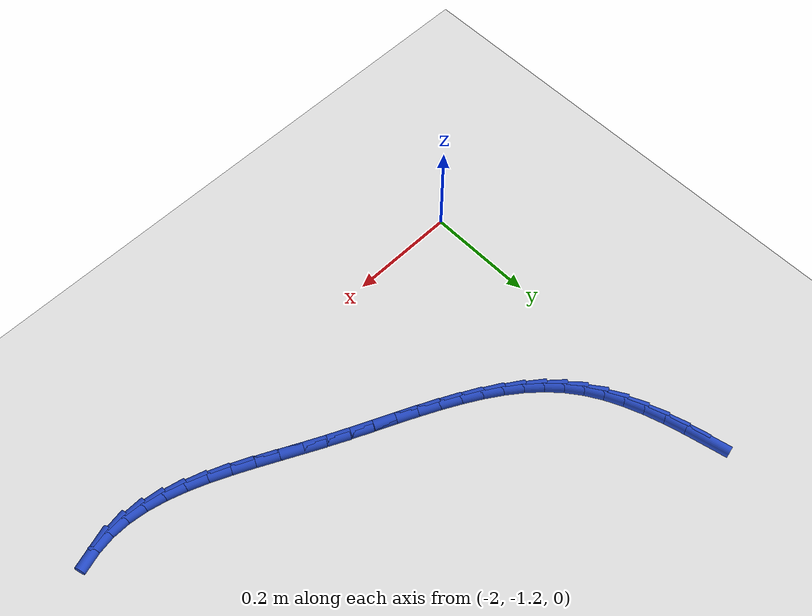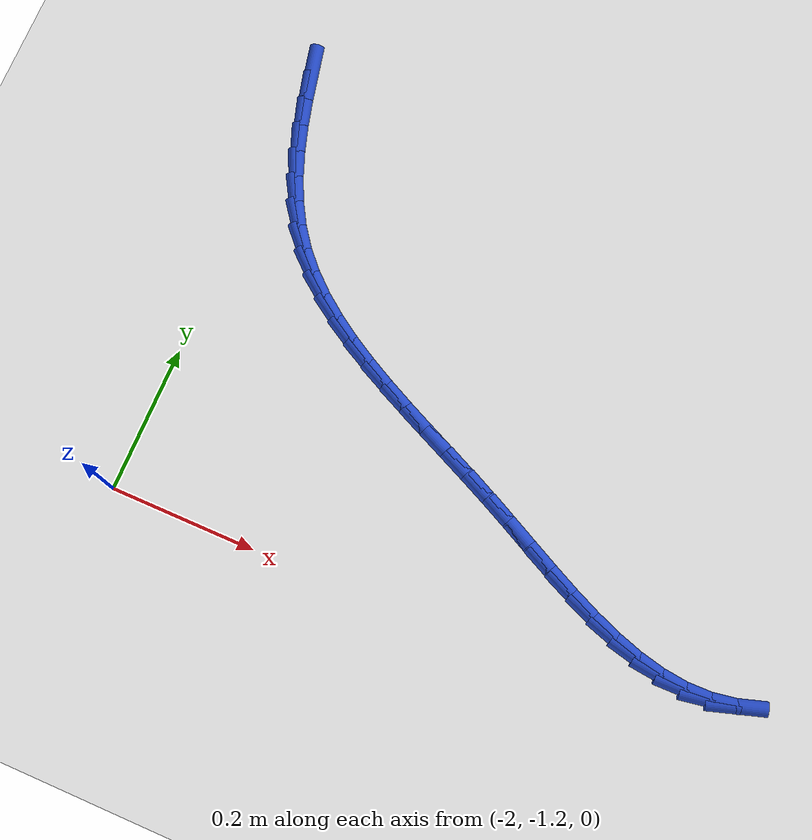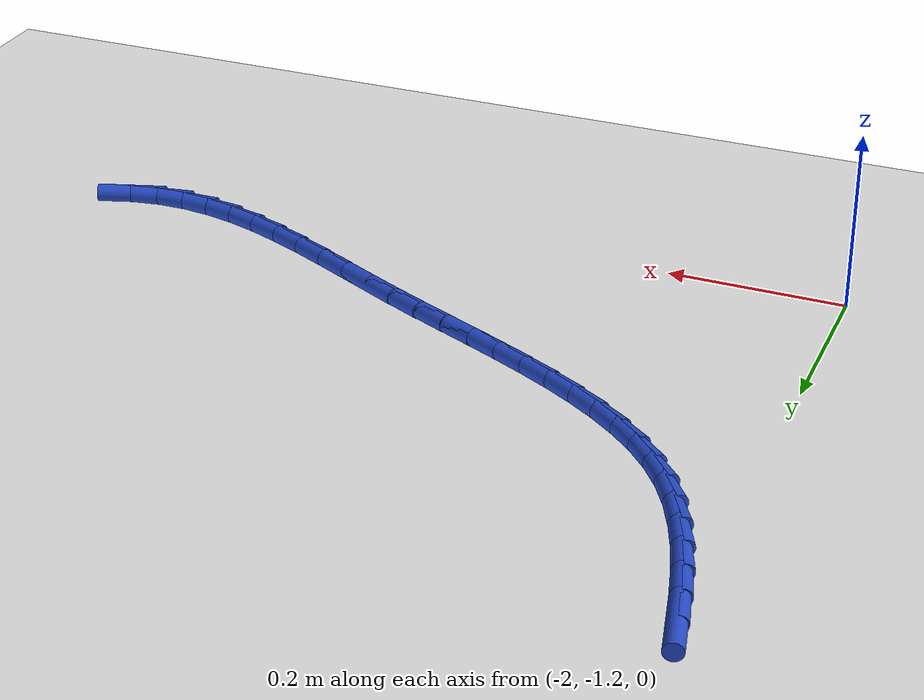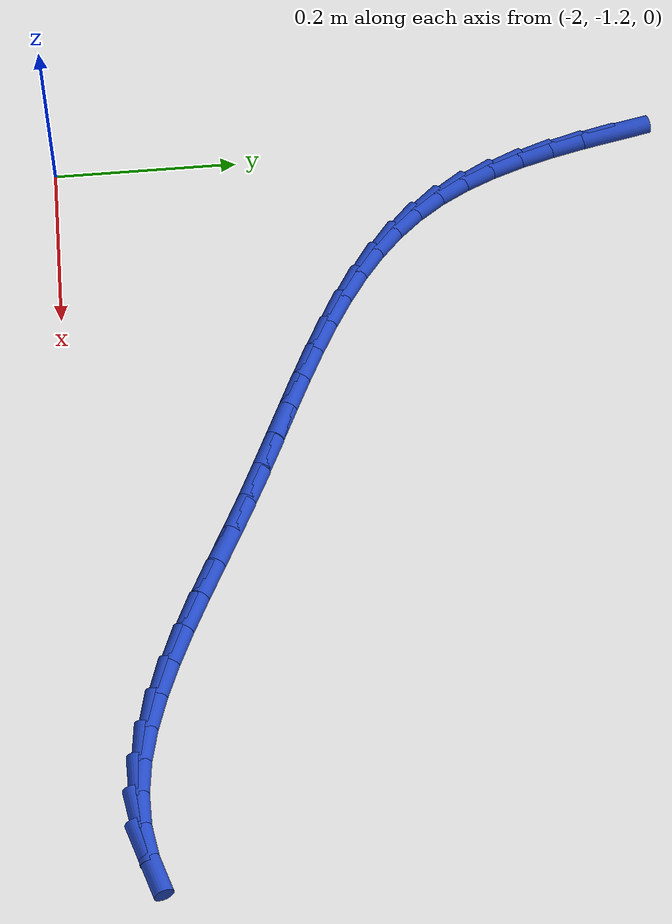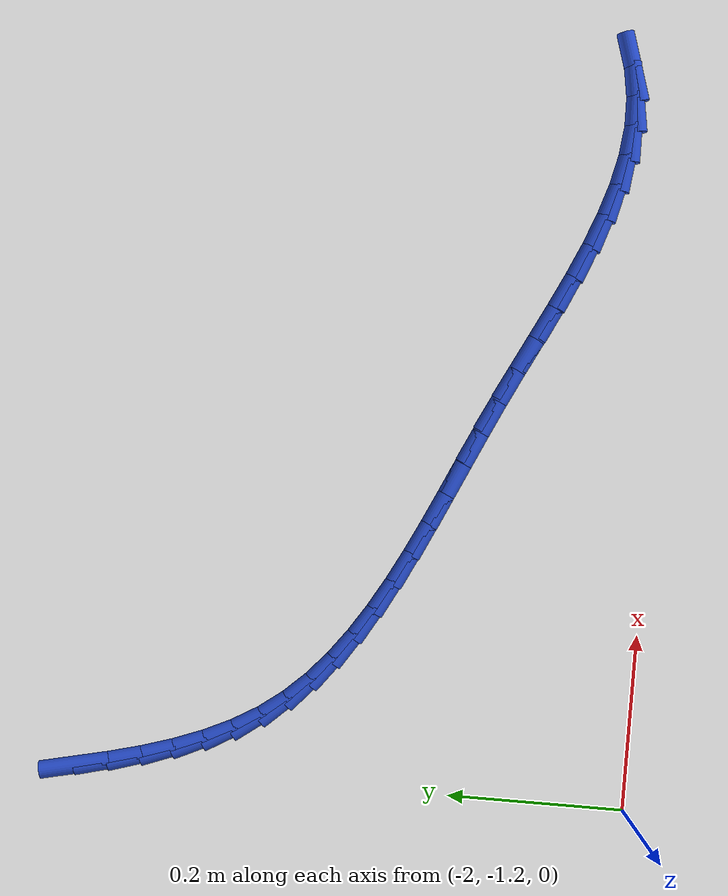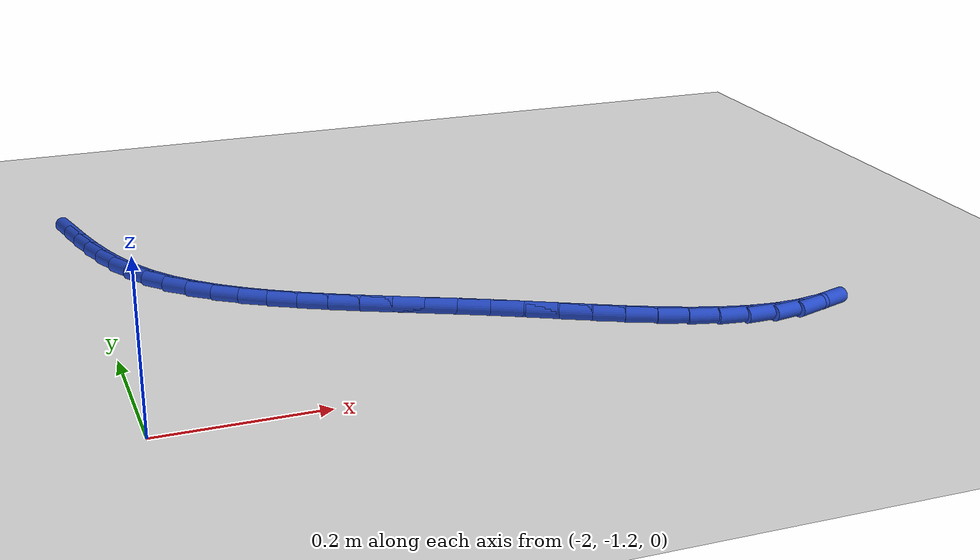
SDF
<sdf version="1.6">
 <world name="default">
  <model name="ground_plane">
   <static>1</static>
   <link name="link">
    <collision name="collision">
     <geometry><plane><normal>0 0 1</normal><size>100 100</size></plane></geometry>
     <surface><friction><ode><mu>100</mu><mu2>50</mu2></ode></friction></surface>
    </collision>
    <visual name="visual">
     <cast_shadows>0</cast_shadows>
     <geometry><plane><normal>0 0 1</normal><size>100 100</size></plane></geometry>
     <material>
      <script><uri>file://media/materials/scripts/gazebo.material</uri><name>Gazebo/WhiteGlow</name></script>
     </material>
    </visual>
   </link>
  </model>
  <model name="line">
   <link name="link_103">
    <pose>-1.9987811465578371 -0.5763790556070482 0.01 0 1.57 -1.3476971664473565</pose>
    <collision name="collision">
     <geometry><cylinder><radius>0.01</radius><length>0.08</length></cylinder></geometry>
    </collision>
    <visual name="visual">
     <material>
      <script><name>Gazebo/Blue</name><uri>file://media/materials/scripts/gazebo.material</uri></script>
     </material>
     <geometry><cylinder><radius>0.01</radius><length>0.08</length></cylinder></geometry>
    </visual>
   </link>
   <link name="link_104">
    <pose>-1.990206146395246 -0.6141750622011457 0.01 0 1.57 -1.3139882704953778</pose>
    <collision name="collision">
     <geometry><cylinder><radius>0.01</radius><length>0.08</length></cylinder></geometry>
    </collision>
    <visual name="visual">
     <material>
      <script><name>Gazebo/Blue</name><uri>file://media/materials/scripts/gazebo.material</uri></script>
     </material>
     <geometry><cylinder><radius>0.01</radius><length>0.08</length></cylinder></geometry>
    </visual>
   </link>
   <link name="link_105">
    <pose>-1.9805494109867747 -0.6509476924169767 0.01 0 1.57 -1.2674572673341014</pose>
    <collision name="collision">
     <geometry><cylinder><radius>0.01</radius><length>0.08</length></cylinder></geometry>
    </collision>
    <visual name="visual">
     <material>
      <script><name>Gazebo/Blue</name><uri>file://media/materials/scripts/gazebo.material</uri></script>
     </material>
     <geometry><cylinder><radius>0.01</radius><length>0.08</length></cylinder></geometry>
    </visual>
   </link>
   <link name="link_106">
    <pose>-1.969446816858246 -0.6864193959441629 0.01 0 1.57 -1.2067949294963474</pose>
    <collision name="collision">
     <geometry><cylinder><radius>0.01</radius><length>0.08</length></cylinder></geometry>
    </collision>
    <visual name="visual">
     <material>
      <script><name>Gazebo/Blue</name><uri>file://media/materials/scripts/gazebo.material</uri></script>
     </material>
     <geometry><cylinder><radius>0.01</radius><length>0.08</length></cylinder></geometry>
    </visual>
   </link>
   <link name="link_107">
    <pose>-1.9565342405354802 -0.7203126224723259 0.01 0 1.57 -1.1306892117987464</pose>
    <collision name="collision">
     <geometry><cylinder><radius>0.01</radius><length>0.08</length></cylinder></geometry>
    </collision>
    <visual name="visual">
     <material>
      <script><name>Gazebo/Blue</name><uri>file://media/materials/scripts/gazebo.material</uri></script>
     </material>
     <geometry><cylinder><radius>0.01</radius><length>0.08</length></cylinder></geometry>
    </visual>
   </link>
   <link name="link_108">
    <pose>-1.9414475585443014 -0.7523498216910874 0.01 0 1.57 -1.0382144389401604</pose>
    <collision name="collision">
     <geometry><cylinder><radius>0.01</radius><length>0.08</length></cylinder></geometry>
    </collision>
    <visual name="visual">
     <material>
      <script><name>Gazebo/Blue</name><uri>file://media/materials/scripts/gazebo.material</uri></script>
     </material>
     <geometry><cylinder><radius>0.01</radius><length>0.08</length></cylinder></geometry>
    </visual>
   </link>
   <link name="link_109">
    <pose>-1.9238226474105307 -0.7822534432900698 0.01 0 1.57 -0.9301791211754447</pose>
    <collision name="collision">
     <geometry><cylinder><radius>0.01</radius><length>0.08</length></cylinder></geometry>
    </collision>
    <visual name="visual">
     <material>
      <script><name>Gazebo/Blue</name><uri>file://media/materials/scripts/gazebo.material</uri></script>
     </material>
     <geometry><cylinder><radius>0.01</radius><length>0.08</length></cylinder></geometry>
    </visual>
   </link>
   <link name="link_110">
    <pose>-1.9033144177326398 -0.8097626723370756 0.01 0 1.57 -0.82126412027236</pose>
    <collision name="collision">
     <geometry><cylinder><radius>0.01</radius><length>0.08</length></cylinder></geometry>
    </collision>
    <visual name="visual">
     <material>
      <script><name>Gazebo/Blue</name><uri>file://media/materials/scripts/gazebo.material</uri></script>
     </material>
     <geometry><cylinder><radius>0.01</radius><length>0.08</length></cylinder></geometry>
    </visual>
   </link>
   <link name="link_111">
    <pose>-1.879910189072759 -0.8349089587147207 0.01 0 1.57 -0.7250371680217382</pose>
    <collision name="collision">
     <geometry><cylinder><radius>0.01</radius><length>0.08</length></cylinder></geometry>
    </collision>
    <visual name="visual">
     <material>
      <script><name>Gazebo/Blue</name><uri>file://media/materials/scripts/gazebo.material</uri></script>
     </material>
     <geometry><cylinder><radius>0.01</radius><length>0.08</length></cylinder></geometry>
    </visual>
   </link>
   <link name="link_112">
    <pose>-1.8538799356122424 -0.8579722714762054 0.01 0 1.57 -0.6431682542207866</pose>
    <collision name="collision">
     <geometry><cylinder><radius>0.01</radius><length>0.08</length></cylinder></geometry>
    </collision>
    <visual name="visual">
     <material>
      <script><name>Gazebo/Blue</name><uri>file://media/materials/scripts/gazebo.material</uri></script>
     </material>
     <geometry><cylinder><radius>0.01</radius><length>0.08</length></cylinder></geometry>
    </visual>
   </link>
   <link name="link_113">
    <pose>-1.825502632657568 -0.8792404937578461 0.01 0 1.57 -0.5757173278663115</pose>
    <collision name="collision">
     <geometry><cylinder><radius>0.01</radius><length>0.08</length></cylinder></geometry>
    </collision>
    <visual name="visual">
     <material>
      <script><name>Gazebo/Blue</name><uri>file://media/materials/scripts/gazebo.material</uri></script>
     </material>
     <geometry><cylinder><radius>0.01</radius><length>0.08</length></cylinder></geometry>
    </visual>
   </link>
   <link name="link_114">
    <pose>-1.7950572555152151 -0.8990015086959621 0.01 0 1.57 -0.521994365267637</pose>
    <collision name="collision">
     <geometry><cylinder><radius>0.01</radius><length>0.08</length></cylinder></geometry>
    </collision>
    <visual name="visual">
     <material>
      <script><name>Gazebo/Blue</name><uri>file://media/materials/scripts/gazebo.material</uri></script>
     </material>
     <geometry><cylinder><radius>0.01</radius><length>0.08</length></cylinder></geometry>
    </visual>
   </link>
   <link name="link_115">
    <pose>-1.7628227794916629 -0.9175431994268715 0.01 0 1.57 -0.4809891052238394</pose>
    <collision name="collision">
     <geometry><cylinder><radius>0.01</radius><length>0.08</length></cylinder></geometry>
    </collision>
    <visual name="visual">
     <material>
      <script><name>Gazebo/Blue</name><uri>file://media/materials/scripts/gazebo.material</uri></script>
     </material>
     <geometry><cylinder><radius>0.01</radius><length>0.08</length></cylinder></geometry>
    </visual>
   </link>
   <link name="link_116">
    <pose>-1.729078179893391 -0.9351534490868915 0.01 0 1.57 -0.45165570627455687</pose>
    <collision name="collision">
     <geometry><cylinder><radius>0.01</radius><length>0.08</length></cylinder></geometry>
    </collision>
    <visual name="visual">
     <material>
      <script><name>Gazebo/Blue</name><uri>file://media/materials/scripts/gazebo.material</uri></script>
     </material>
     <geometry><cylinder><radius>0.01</radius><length>0.08</length></cylinder></geometry>
    </visual>
   </link>
   <link name="link_117">
    <pose>-1.6941024320268774 -0.9521201408123406 0.01 0 1.57 -0.43307069379231916</pose>
    <collision name="collision">
     <geometry><cylinder><radius>0.01</radius><length>0.08</length></cylinder></geometry>
    </collision>
    <visual name="visual">
     <material>
      <script><name>Gazebo/Blue</name><uri>file://media/materials/scripts/gazebo.material</uri></script>
     </material>
     <geometry><cylinder><radius>0.01</radius><length>0.08</length></cylinder></geometry>
    </visual>
   </link>
   <link name="link_118">
    <pose>-1.6581745111986017 -0.9687311577395368 0.01 0 1.57 -0.42450498620148597</pose>
    <collision name="collision">
     <geometry><cylinder><radius>0.01</radius><length>0.08</length></cylinder></geometry>
    </collision>
    <visual name="visual">
     <material>
      <script><name>Gazebo/Blue</name><uri>file://media/materials/scripts/gazebo.material</uri></script>
     </material>
     <geometry><cylinder><radius>0.01</radius><length>0.08</length></cylinder></geometry>
    </visual>
   </link>
   <link name="link_119">
    <pose>-1.6215733927150429 -0.9852743830047987 0.01 0 1.57 -0.42544521777746863</pose>
    <collision name="collision">
     <geometry><cylinder><radius>0.01</radius><length>0.08</length></cylinder></geometry>
    </collision>
    <visual name="visual">
     <material>
      <script><name>Gazebo/Blue</name><uri>file://media/materials/scripts/gazebo.material</uri></script>
     </material>
     <geometry><cylinder><radius>0.01</radius><length>0.08</length></cylinder></geometry>
    </visual>
   </link>
   <link name="link_120">
    <pose>-1.5845780518826795 -1.0020376997444442 0.01 0 1.57 -0.43558703518714526</pose>
    <collision name="collision">
     <geometry><cylinder><radius>0.01</radius><length>0.08</length></cylinder></geometry>
    </collision>
    <visual name="visual">
     <material>
      <script><name>Gazebo/Blue</name><uri>file://media/materials/scripts/gazebo.material</uri></script>
     </material>
     <geometry><cylinder><radius>0.01</radius><length>0.08</length></cylinder></geometry>
    </visual>
   </link>
   <link name="link_121">
    <pose>-1.5474674640079915 -1.019308991094791 0.01 0 1.57 -0.45330822308421914</pose>
    <collision name="collision">
     <geometry><cylinder><radius>0.01</radius><length>0.08</length></cylinder></geometry>
    </collision>
    <visual name="visual">
     <material>
      <script><name>Gazebo/Blue</name><uri>file://media/materials/scripts/gazebo.material</uri></script>
     </material>
     <geometry><cylinder><radius>0.01</radius><length>0.08</length></cylinder></geometry>
    </visual>
   </link>
   <link name="link_122">
    <pose>-1.5105032624842292 -1.037315798111702 0.01 0 1.57 -0.46502037150977166</pose>
    <collision name="collision">
     <geometry><cylinder><radius>0.01</radius><length>0.08</length></cylinder></geometry>
    </collision>
    <visual name="visual">
     <material>
      <script><name>Gazebo/Blue</name><uri>file://media/materials/scripts/gazebo.material</uri></script>
     </material>
     <geometry><cylinder><radius>0.01</radius><length>0.08</length></cylinder></geometry>
    </visual>
   </link>
   <link name="link_123">
    <pose>-1.473789090605125 -1.055735927160843 0.01 0 1.57 -0.4635375548807382</pose>
    <collision name="collision">
     <geometry><cylinder><radius>0.01</radius><length>0.08</length></cylinder></geometry>
    </collision>
    <visual name="visual">
     <material>
      <script><name>Gazebo/Blue</name><uri>file://media/materials/scripts/gazebo.material</uri></script>
     </material>
     <geometry><cylinder><radius>0.01</radius><length>0.08</length></cylinder></geometry>
    </visual>
   </link>
   <link name="link_124">
    <pose>-1.437344154676043 -1.0739533817570415 0.01 0 1.57 -0.44843031824717783</pose>
    <collision name="collision">
     <geometry><cylinder><radius>0.01</radius><length>0.08</length></cylinder></geometry>
    </collision>
    <visual name="visual">
     <material>
      <script><name>Gazebo/Blue</name><uri>file://media/materials/scripts/gazebo.material</uri></script>
     </material>
     <geometry><cylinder><radius>0.01</radius><length>0.08</length></cylinder></geometry>
    </visual>
   </link>
   <link name="link_125">
    <pose>-1.4011868655333006 -1.0913493975396003 0.01 0 1.57 -0.4187350550060369</pose>
    <collision name="collision">
     <geometry><cylinder><radius>0.01</radius><length>0.08</length></cylinder></geometry>
    </collision>
    <visual name="visual">
     <material>
      <script><name>Gazebo/Blue</name><uri>file://media/materials/scripts/gazebo.material</uri></script>
     </material>
     <geometry><cylinder><radius>0.01</radius><length>0.08</length></cylinder></geometry>
    </visual>
   </link>
   <link name="link_126">
    <pose>-1.365335634013216 -1.107305210147822 0.01 0 1.57 -0.3728673307870903</pose>
    <collision name="collision">
     <geometry><cylinder><radius>0.01</radius><length>0.08</length></cylinder></geometry>
    </collision>
    <visual name="visual">
     <material>
      <script><name>Gazebo/Blue</name><uri>file://media/materials/scripts/gazebo.material</uri></script>
     </material>
     <geometry><cylinder><radius>0.01</radius><length>0.08</length></cylinder></geometry>
    </visual>
   </link>
   <link name="link_127">
    <pose>-1.3298088709521072 -1.1212020552210091 0.01 0 1.57 -0.308678298807698</pose>
    <collision name="collision">
     <geometry><cylinder><radius>0.01</radius><length>0.08</length></cylinder></geometry>
    </collision>
    <visual name="visual">
     <material>
      <script><name>Gazebo/Blue</name><uri>file://media/materials/scripts/gazebo.material</uri></script>
     </material>
     <geometry><cylinder><radius>0.01</radius><length>0.08</length></cylinder></geometry>
    </visual>
   </link>
   <link name="link_128">
    <pose>-1.2946249871862916 -1.1324211683984644 0.01 0 1.57 -0.22370572086758728</pose>
    <collision name="collision">
     <geometry><cylinder><radius>0.01</radius><length>0.08</length></cylinder></geometry>
    </collision>
    <visual name="visual">
     <material>
      <script><name>Gazebo/Blue</name><uri>file://media/materials/scripts/gazebo.material</uri></script>
     </material>
     <geometry><cylinder><radius>0.01</radius><length>0.08</length></cylinder></geometry>
    </visual>
   </link>
   <link name="link_129">
    <pose>-1.2598023935520872 -1.1403437853194907 0.01 0 1.57 -0.11582707396898931</pose>
    <collision name="collision">
     <geometry><cylinder><radius>0.01</radius><length>0.08</length></cylinder></geometry>
    </collision>
    <visual name="visual">
     <material>
      <script><name>Gazebo/Blue</name><uri>file://media/materials/scripts/gazebo.material</uri></script>
     </material>
     <geometry><cylinder><radius>0.01</radius><length>0.08</length></cylinder></geometry>
    </visual>
   </link>
   <link name="link_130">
    <pose>-1.2253595008858116 -1.1443511416233902 0.01 0 1.57 0.015468646089049418</pose>
    <collision name="collision">
     <geometry><cylinder><radius>0.01</radius><length>0.08</length></cylinder></geometry>
    </collision>
    <visual name="visual">
     <material>
      <script><name>Gazebo/Blue</name><uri>file://media/materials/scripts/gazebo.material</uri></script>
     </material>
     <geometry><cylinder><radius>0.01</radius><length>0.08</length></cylinder></geometry>
    </visual>
   </link>
   <link name="link_131">
    <pose>-1.1913147200237821 -1.1438244729494662 0.01 0 1.57 0.16574984905607065</pose>
    <collision name="collision">
     <geometry><cylinder><radius>0.01</radius><length>0.08</length></cylinder></geometry>
    </collision>
    <visual name="visual">
     <material>
      <script><name>Gazebo/Blue</name><uri>file://media/materials/scripts/gazebo.material</uri></script>
     </material>
     <geometry><cylinder><radius>0.01</radius><length>0.08</length></cylinder></geometry>
    </visual>
   </link>
   <link name="link_132">
    <pose>-1.1576805171731204 -1.1381979887957967 0.01 0 1.57 0.3030118062454791</pose>
    <collision name="collision">
     <geometry><cylinder><radius>0.01</radius><length>0.08</length></cylinder></geometry>
    </collision>
    <visual name="visual">
     <material>
      <script><name>Gazebo/Blue</name><uri>file://media/materials/scripts/gazebo.material</uri></script>
     </material>
     <geometry><cylinder><radius>0.01</radius><length>0.08</length></cylinder></geometry>
    </visual>
   </link>
  </model>
 </world>
</sdf>
